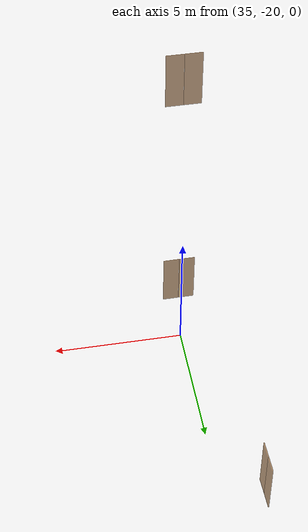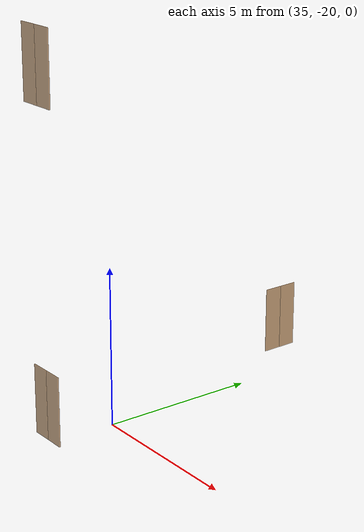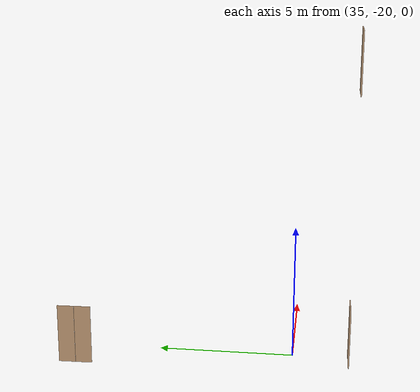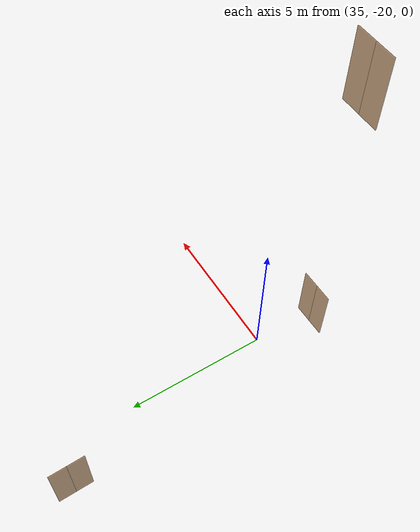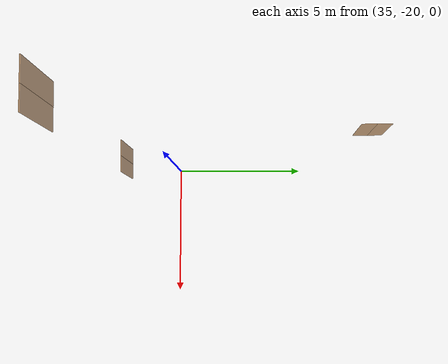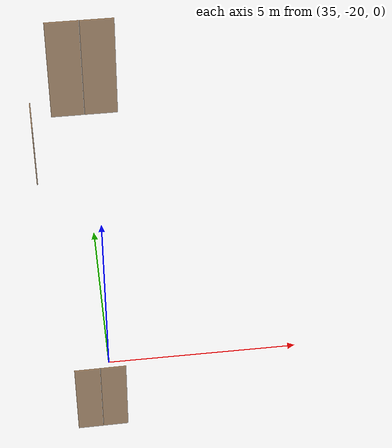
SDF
<sdf version="1.7">
 <world name="sim_world">
  <model name="door27">
   <pose>33.441785810437636 -12.070729478662258 0.0 0 0 1.587504132487737</pose>
   <link name="right">
    <pose>0.3083574587941471 0 1.11 0 0 0</pose>
    <visual name="right_visual">
     <geometry><box><size>0.6067149175882942 0.03 2.2</size></box></geometry>
     <material>
      <ambient>0.5 0.25 0 0.6</ambient>
      <diffuse>0.5 0.25 0 0.6</diffuse>
      <pbr><metal><metalness>0.0</metalness></metal></pbr>
     </material>
    </visual>
    <collision name="right_collision">
     <geometry><box><size>0.6067149175882942 0.03 2.2</size></box></geometry>
     <surface><contact><collide_bitmask>0x02</collide_bitmask></contact></surface>
    </collision>
    <inertial>
     <mass>50.0</mass>
     <inertia><ixx>20.17041666666667</ixx><iyy>21.700429130100716</iyy><izz>1.5375124634340445</izz></inertia>
    </inertial>
   </link>
   <joint name="right_joint" type="revolute">
    <parent>world</parent>
    <child>right</child>
    <axis><xyz>0 0 -1</xyz><limit><lower>0</lower><upper>1.57</upper></limit></axis>
    <pose>0.3083574587941471 0 0 0 0 0</pose>
   </joint>
   <link name="left">
    <pose>-0.3083574587941471 0 1.11 0 0 0</pose>
    <visual name="left_visual">
     <geometry><box><size>0.6067149175882942 0.03 2.2</size></box></geometry>
     <material>
      <ambient>0.5 0.25 0 0.6</ambient>
      <diffuse>0.5 0.25 0 0.6</diffuse>
      <pbr><metal><metalness>0.0</metalness></metal></pbr>
     </material>
    </visual>
    <collision name="left_collision">
     <geometry><box><size>0.6067149175882942 0.03 2.2</size></box></geometry>
     <surface><contact><collide_bitmask>0x02</collide_bitmask></contact></surface>
    </collision>
    <inertial>
     <mass>50.0</mass>
     <inertia><ixx>20.17041666666667</ixx><iyy>21.700429130100716</iyy><izz>1.5375124634340445</izz></inertia>
    </inertial>
   </link>
   <joint name="left_joint" type="revolute">
    <parent>world</parent>
    <child>left</child>
    <axis><xyz>0 0 -1</xyz><limit><lower>-1.57</lower><upper>0</upper></limit></axis>
    <pose>-0.3083574587941471 0 0 0 0 0</pose>
   </joint>
   <plugin name="register_component" filename="libregister_component.so">
    <component name="Door">
     <v_max_door>0.5</v_max_door>
     <a_max_door>0.3</a_max_door>
     <a_nom_door>0.15</a_nom_door>
     <dx_min_door>0.01</dx_min_door>
     <f_max_door>500.0</f_max_door>
     <ros_interface>true</ros_interface>
     <door name="door27" type="DoubleSwingDoor" left_joint_name="left_joint" right_joint_name="right_joint"/>
    </component>
   </plugin>
  </model>
  <model name="door29">
   <pose>34.68749171236378 -22.057737200573676 0.0 0 0 -3.131959881835861</pose>
   <link name="right">
    <pose>0.3151762883514032 0 1.11 0 0 0</pose>
    <visual name="right_visual">
     <geometry><box><size>0.6203525767028064 0.03 2.2</size></box></geometry>
     <material>
      <ambient>0.5 0.25 0 0.6</ambient>
      <diffuse>0.5 0.25 0 0.6</diffuse>
      <pbr><metal><metalness>0.0</metalness></metal></pbr>
     </material>
    </visual>
    <collision name="right_collision">
     <geometry><box><size>0.6203525767028064 0.03 2.2</size></box></geometry>
     <surface><contact><collide_bitmask>0x02</collide_bitmask></contact></surface>
    </collision>
    <inertial>
     <mass>50.0</mass>
     <inertia><ixx>20.17041666666667</ixx><iyy>21.77015549759089</iyy><izz>1.607238830924214</izz></inertia>
    </inertial>
   </link>
   <joint name="right_joint" type="revolute">
    <parent>world</parent>
    <child>right</child>
    <axis><xyz>0 0 -1</xyz><limit><lower>0</lower><upper>1.57</upper></limit></axis>
    <pose>0.3151762883514032 0 0 0 0 0</pose>
   </joint>
   <link name="left">
    <pose>-0.3151762883514032 0 1.11 0 0 0</pose>
    <visual name="left_visual">
     <geometry><box><size>0.6203525767028064 0.03 2.2</size></box></geometry>
     <material>
      <ambient>0.5 0.25 0 0.6</ambient>
      <diffuse>0.5 0.25 0 0.6</diffuse>
      <pbr><metal><metalness>0.0</metalness></metal></pbr>
     </material>
    </visual>
    <collision name="left_collision">
     <geometry><box><size>0.6203525767028064 0.03 2.2</size></box></geometry>
     <surface><contact><collide_bitmask>0x02</collide_bitmask></contact></surface>
    </collision>
    <inertial>
     <mass>50.0</mass>
     <inertia><ixx>20.17041666666667</ixx><iyy>21.77015549759089</iyy><izz>1.607238830924214</izz></inertia>
    </inertial>
   </link>
   <joint name="left_joint" type="revolute">
    <parent>world</parent>
    <child>left</child>
    <axis><xyz>0 0 -1</xyz><limit><lower>-1.57</lower><upper>0</upper></limit></axis>
    <pose>-0.3151762883514032 0 0 0 0 0</pose>
   </joint>
   <plugin name="register_component" filename="libregister_component.so">
    <component name="Door">
     <v_max_door>0.5</v_max_door>
     <a_max_door>0.3</a_max_door>
     <a_nom_door>0.15</a_nom_door>
     <dx_min_door>0.01</dx_min_door>
     <f_max_door>500.0</f_max_door>
     <ros_interface>true</ros_interface>
     <door name="door29" type="DoubleSwingDoor" left_joint_name="left_joint" right_joint_name="right_joint"/>
    </component>
   </plugin>
  </model>
  <model name="N1_door22">
   <pose>34.687717486322796 -22.072256795493153 10.0 0 0 -3.1389810117286547</pose>
   <link name="right">
    <pose>0.33147173419256043 0 1.11 0 0 0</pose>
    <visual name="right_visual">
     <geometry><box><size>0.6529434683851209 0.03 2.2</size></box></geometry>
     <material>
      <ambient>0.5 0.25 0 0.6</ambient>
      <diffuse>0.5 0.25 0 0.6</diffuse>
      <pbr><metal><metalness>0.0</metalness></metal></pbr>
     </material>
    </visual>
    <collision name="right_collision">
     <geometry><box><size>0.6529434683851209 0.03 2.2</size></box></geometry>
     <surface><contact><collide_bitmask>0x02</collide_bitmask></contact></surface>
    </collision>
    <inertial>
     <mass>50.0</mass>
     <inertia><ixx>20.17041666666667</ixx><iyy>21.943063220444966</iyy><izz>1.7801465537782972</izz></inertia>
    </inertial>
   </link>
   <joint name="right_joint" type="revolute">
    <parent>world</parent>
    <child>right</child>
    <axis><xyz>0 0 -1</xyz><limit><lower>0</lower><upper>1.57</upper></limit></axis>
    <pose>0.33147173419256043 0 0 0 0 0</pose>
   </joint>
   <link name="left">
    <pose>-0.33147173419256043 0 1.11 0 0 0</pose>
    <visual name="left_visual">
     <geometry><box><size>0.6529434683851209 0.03 2.2</size></box></geometry>
     <material>
      <ambient>0.5 0.25 0 0.6</ambient>
      <diffuse>0.5 0.25 0 0.6</diffuse>
      <pbr><metal><metalness>0.0</metalness></metal></pbr>
     </material>
    </visual>
    <collision name="left_collision">
     <geometry><box><size>0.6529434683851209 0.03 2.2</size></box></geometry>
     <surface><contact><collide_bitmask>0x02</collide_bitmask></contact></surface>
    </collision>
    <inertial>
     <mass>50.0</mass>
     <inertia><ixx>20.17041666666667</ixx><iyy>21.943063220444966</iyy><izz>1.7801465537782972</izz></inertia>
    </inertial>
   </link>
   <joint name="left_joint" type="revolute">
    <parent>world</parent>
    <child>left</child>
    <axis><xyz>0 0 -1</xyz><limit><lower>-1.57</lower><upper>0</upper></limit></axis>
    <pose>-0.33147173419256043 0 0 0 0 0</pose>
   </joint>
   <plugin name="register_component" filename="libregister_component.so">
    <component name="Door">
     <v_max_door>0.5</v_max_door>
     <a_max_door>0.3</a_max_door>
     <a_nom_door>0.15</a_nom_door>
     <dx_min_door>0.01</dx_min_door>
     <f_max_door>500.0</f_max_door>
     <ros_interface>true</ros_interface>
     <door name="N1_door22" type="DoubleSwingDoor" left_joint_name="left_joint" right_joint_name="right_joint"/>
    </component>
   </plugin>
  </model>
 </world>
</sdf>
